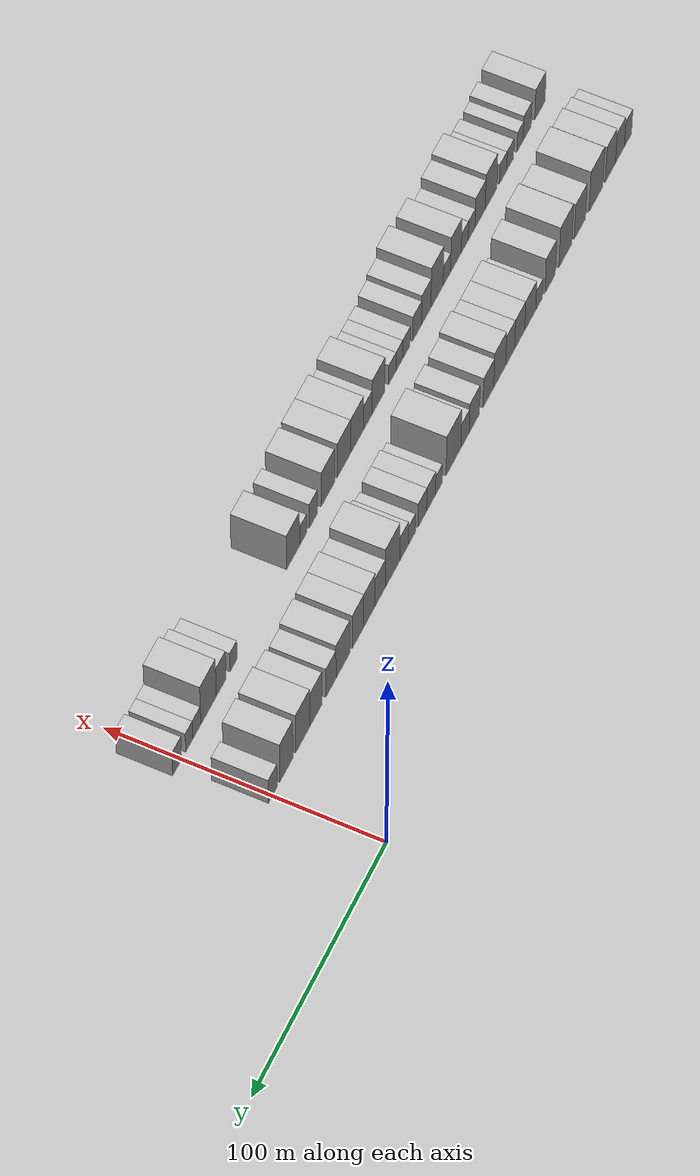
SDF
<sdf version="1.6">
 <world name="default">
  <include><name>ground_plane_1</name><uri>model://HANNAS_ground_plane</uri></include>
  <include>
   <name>ground_plane_2</name>
   <uri>model://HANNAS_ground_plane</uri>
   <pose>100 0 0  0 0 0</pose>
  </include>
  <model name="building_1">
   <static>1</static>
   <pose>50.0000 -280.9555 0 0.000000 0.000000 0.000000</pose>
   <link name="link">
    <pose>0 0 7.50 0 0 0</pose>
    <collision name="collision"><geometry><box><size>20.0000 6.0890 15.0000</size></box></geometry></collision>
    <visual name="visual">
     <cast_shadows>0</cast_shadows>
     <geometry><box><size>20.0000 6.0890 15.0000</size></box></geometry>
     <material>
      <script>
       <uri>model://HANNAS_wall/materials/scripts</uri>
       <uri>model://HANNAS_wall/materials/textures</uri>
       <name>vrc/HANNAS_wall</name>
      </script>
     </material>
    </visual>
   </link>
  </model>
  <model name="building_2">
   <static>1</static>
   <pose>50.0000 -274.2463 0 0.000000 0.000000 0.000000</pose>
   <link name="link">
    <pose>0 0 9.00 0 0 0</pose>
    <collision name="collision"><geometry><box><size>20.0000 7.3294 18.0000</size></box></geometry></collision>
    <visual name="visual">
     <cast_shadows>0</cast_shadows>
     <geometry><box><size>20.0000 7.3294 18.0000</size></box></geometry>
     <material>
      <script>
       <uri>model://HANNAS_wall/materials/scripts</uri>
       <uri>model://HANNAS_wall/materials/textures</uri>
       <name>vrc/HANNAS_wall</name>
      </script>
     </material>
    </visual>
   </link>
  </model>
  <model name="building_3">
   <static>1</static>
   <pose>50.0000 -266.2913 0 0.000000 0.000000 0.000000</pose>
   <link name="link">
    <pose>0 0 10.50 0 0 0</pose>
    <collision name="collision"><geometry><box><size>20.0000 8.5806 21.0000</size></box></geometry></collision>
    <visual name="visual">
     <cast_shadows>0</cast_shadows>
     <geometry><box><size>20.0000 8.5806 21.0000</size></box></geometry>
     <material>
      <script>
       <uri>model://HANNAS_wall/materials/scripts</uri>
       <uri>model://HANNAS_wall/materials/textures</uri>
       <name>vrc/HANNAS_wall</name>
      </script>
     </material>
    </visual>
   </link>
  </model>
  <model name="building_4">
   <static>1</static>
   <pose>50.0000 -254.3090 0 0.000000 0.000000 0.000000</pose>
   <link name="link">
    <pose>0 0 12.00 0 0 0</pose>
    <collision name="collision"><geometry><box><size>20.0000 11.3840 24.0000</size></box></geometry></collision>
    <visual name="visual">
     <cast_shadows>0</cast_shadows>
     <geometry><box><size>20.0000 11.3840 24.0000</size></box></geometry>
     <material>
      <script>
       <uri>model://HANNAS_wall/materials/scripts</uri>
       <uri>model://HANNAS_wall/materials/textures</uri>
       <name>vrc/HANNAS_wall</name>
      </script>
     </material>
    </visual>
   </link>
  </model>
  <model name="building_5">
   <static>1</static>
   <pose>50.0000 -240.9805 0 0.000000 0.000000 0.000000</pose>
   <link name="link">
    <pose>0 0 10.50 0 0 0</pose>
    <collision name="collision"><geometry><box><size>20.0000 9.2729 21.0000</size></box></geometry></collision>
    <visual name="visual">
     <cast_shadows>0</cast_shadows>
     <geometry><box><size>20.0000 9.2729 21.0000</size></box></geometry>
     <material>
      <script>
       <uri>model://HANNAS_wall/materials/scripts</uri>
       <uri>model://HANNAS_wall/materials/textures</uri>
       <name>vrc/HANNAS_wall</name>
      </script>
     </material>
    </visual>
   </link>
  </model>
  <model name="building_6">
   <static>1</static>
   <pose>50.0000 -229.0669 0 0.000000 0.000000 0.000000</pose>
   <link name="link">
    <pose>0 0 12.00 0 0 0</pose>
    <collision name="collision"><geometry><box><size>20.0000 10.5544 24.0000</size></box></geometry></collision>
    <visual name="visual">
     <cast_shadows>0</cast_shadows>
     <geometry><box><size>20.0000 10.5544 24.0000</size></box></geometry>
     <material>
      <script>
       <uri>model://HANNAS_wall/materials/scripts</uri>
       <uri>model://HANNAS_wall/materials/textures</uri>
       <name>vrc/HANNAS_wall</name>
      </script>
     </material>
    </visual>
   </link>
  </model>
  <model name="building_7">
   <static>1</static>
   <pose>50.0000 -216.5448 0 0.000000 0.000000 0.000000</pose>
   <link name="link">
    <pose>0 0 10.50 0 0 0</pose>
    <collision name="collision"><geometry><box><size>20.0000 8.4898 21.0000</size></box></geometry></collision>
    <visual name="visual">
     <cast_shadows>0</cast_shadows>
     <geometry><box><size>20.0000 8.4898 21.0000</size></box></geometry>
     <material>
      <script>
       <uri>model://HANNAS_wall/materials/scripts</uri>
       <uri>model://HANNAS_wall/materials/textures</uri>
       <name>vrc/HANNAS_wall</name>
      </script>
     </material>
    </visual>
   </link>
  </model>
  <model name="building_8">
   <static>1</static>
   <pose>50.0000 -207.5800 0 0.000000 0.000000 0.000000</pose>
   <link name="link">
    <pose>0 0 6.00 0 0 0</pose>
    <collision name="collision"><geometry><box><size>20.0000 5.4399 12.0000</size></box></geometry></collision>
    <visual name="visual">
     <cast_shadows>0</cast_shadows>
     <geometry><box><size>20.0000 5.4399 12.0000</size></box></geometry>
     <material>
      <script>
       <uri>model://HANNAS_wall/materials/scripts</uri>
       <uri>model://HANNAS_wall/materials/textures</uri>
       <name>vrc/HANNAS_wall</name>
      </script>
     </material>
    </visual>
   </link>
  </model>
  <model name="building_9">
   <static>1</static>
   <pose>50.0000 -200.3853 0 0.000000 0.000000 0.000000</pose>
   <link name="link">
    <pose>0 0 9.00 0 0 0</pose>
    <collision name="collision"><geometry><box><size>20.0000 8.9496 18.0000</size></box></geometry></collision>
    <visual name="visual">
     <cast_shadows>0</cast_shadows>
     <geometry><box><size>20.0000 8.9496 18.0000</size></box></geometry>
     <material>
      <script>
       <uri>model://HANNAS_wall/materials/scripts</uri>
       <uri>model://HANNAS_wall/materials/textures</uri>
       <name>vrc/HANNAS_wall</name>
      </script>
     </material>
    </visual>
   </link>
  </model>
  <model name="building_10">
   <static>1</static>
   <pose>50.0000 -191.7918 0 0.000000 0.000000 0.000000</pose>
   <link name="link">
    <pose>0 0 9.00 0 0 0</pose>
    <collision name="collision"><geometry><box><size>20.0000 8.2374 18.0000</size></box></geometry></collision>
    <visual name="visual">
     <cast_shadows>0</cast_shadows>
     <geometry><box><size>20.0000 8.2374 18.0000</size></box></geometry>
     <material>
      <script>
       <uri>model://HANNAS_wall/materials/scripts</uri>
       <uri>model://HANNAS_wall/materials/textures</uri>
       <name>vrc/HANNAS_wall</name>
      </script>
     </material>
    </visual>
   </link>
  </model>
  <model name="building_11">
   <static>1</static>
   <pose>50.0000 -184.0560 0 0.000000 0.000000 0.000000</pose>
   <link name="link">
    <pose>0 0 9.00 0 0 0</pose>
    <collision name="collision"><geometry><box><size>20.0000 7.2342 18.0000</size></box></geometry></collision>
    <visual name="visual">
     <cast_shadows>0</cast_shadows>
     <geometry><box><size>20.0000 7.2342 18.0000</size></box></geometry>
     <material>
      <script>
       <uri>model://HANNAS_wall/materials/scripts</uri>
       <uri>model://HANNAS_wall/materials/textures</uri>
       <name>vrc/HANNAS_wall</name>
      </script>
     </material>
    </visual>
   </link>
  </model>
  <model name="building_12">
   <static>1</static>
   <pose>50.0000 -175.7094 0 0.000000 0.000000 0.000000</pose>
   <link name="link">
    <pose>0 0 10.50 0 0 0</pose>
    <collision name="collision"><geometry><box><size>20.0000 9.4589 21.0000</size></box></geometry></collision>
    <visual name="visual">
     <cast_shadows>0</cast_shadows>
     <geometry><box><size>20.0000 9.4589 21.0000</size></box></geometry>
     <material>
      <script>
       <uri>model://HANNAS_wall/materials/scripts</uri>
       <uri>model://HANNAS_wall/materials/textures</uri>
       <name>vrc/HANNAS_wall</name>
      </script>
     </material>
    </visual>
   </link>
  </model>
  <model name="building_13">
   <static>1</static>
   <pose>50.0000 -166.6836 0 0.000000 0.000000 0.000000</pose>
   <link name="link">
    <pose>0 0 9.00 0 0 0</pose>
    <collision name="collision"><geometry><box><size>20.0000 8.5927 18.0000</size></box></geometry></collision>
    <visual name="visual">
     <cast_shadows>0</cast_shadows>
     <geometry><box><size>20.0000 8.5927 18.0000</size></box></geometry>
     <material>
      <script>
       <uri>model://HANNAS_wall/materials/scripts</uri>
       <uri>model://HANNAS_wall/materials/textures</uri>
       <name>vrc/HANNAS_wall</name>
      </script>
     </material>
    </visual>
   </link>
  </model>
  <model name="building_14">
   <static>1</static>
   <pose>50.0000 -155.3409 0 0.000000 0.000000 0.000000</pose>
   <link name="link">
    <pose>0 0 9.00 0 0 0</pose>
    <collision name="collision"><geometry><box><size>20.0000 8.0925 18.0000</size></box></geometry></collision>
    <visual name="visual">
     <cast_shadows>0</cast_shadows>
     <geometry><box><size>20.0000 8.0925 18.0000</size></box></geometry>
     <material>
      <script>
       <uri>model://HANNAS_wall/materials/scripts</uri>
       <uri>model://HANNAS_wall/materials/textures</uri>
       <name>vrc/HANNAS_wall</name>
      </script>
     </material>
    </visual>
   </link>
  </model>
  <model name="building_15">
   <static>1</static>
   <pose>50.0000 -148.0356 0 0.000000 0.000000 0.000000</pose>
   <link name="link">
    <pose>0 0 7.50 0 0 0</pose>
    <collision name="collision"><geometry><box><size>20.0000 6.5181 15.0000</size></box></geometry></collision>
    <visual name="visual">
     <cast_shadows>0</cast_shadows>
     <geometry><box><size>20.0000 6.5181 15.0000</size></box></geometry>
     <material>
      <script>
       <uri>model://HANNAS_wall/materials/scripts</uri>
       <uri>model://HANNAS_wall/materials/textures</uri>
       <name>vrc/HANNAS_wall</name>
      </script>
     </material>
    </visual>
   </link>
  </model>
  <model name="building_16">
   <static>1</static>
   <pose>50.0000 -138.9039 0 0.000000 0.000000 0.000000</pose>
   <link name="link">
    <pose>0 0 12.00 0 0 0</pose>
    <collision name="collision"><geometry><box><size>20.0000 11.7452 24.0000</size></box></geometry></collision>
    <visual name="visual">
     <cast_shadows>0</cast_shadows>
     <geometry><box><size>20.0000 11.7452 24.0000</size></box></geometry>
     <material>
      <script>
       <uri>model://HANNAS_wall/materials/scripts</uri>
       <uri>model://HANNAS_wall/materials/textures</uri>
       <name>vrc/HANNAS_wall</name>
      </script>
     </material>
    </visual>
   </link>
  </model>
  <model name="building_17">
   <static>1</static>
   <pose>50.0000 -127.3835 0 0.000000 0.000000 0.000000</pose>
   <link name="link">
    <pose>0 0 6.00 0 0 0</pose>
    <collision name="collision"><geometry><box><size>20.0000 5.2957 12.0000</size></box></geometry></collision>
    <visual name="visual">
     <cast_shadows>0</cast_shadows>
     <geometry><box><size>20.0000 5.2957 12.0000</size></box></geometry>
     <material>
      <script>
       <uri>model://HANNAS_wall/materials/scripts</uri>
       <uri>model://HANNAS_wall/materials/textures</uri>
       <name>vrc/HANNAS_wall</name>
      </script>
     </material>
    </visual>
   </link>
  </model>
  <model name="building_18">
   <static>1</static>
   <pose>50.0000 -121.2496 0 0.000000 0.000000 0.000000</pose>
   <link name="link">
    <pose>0 0 7.50 0 0 0</pose>
    <collision name="collision"><geometry><box><size>20.0000 6.9722 15.0000</size></box></geometry></collision>
    <visual name="visual">
     <cast_shadows>0</cast_shadows>
     <geometry><box><size>20.0000 6.9722 15.0000</size></box></geometry>
     <material>
      <script>
       <uri>model://HANNAS_wall/materials/scripts</uri>
       <uri>model://HANNAS_wall/materials/textures</uri>
       <name>vrc/HANNAS_wall</name>
      </script>
     </material>
    </visual>
   </link>
  </model>
  <model name="building_19">
   <static>1</static>
   <pose>50.0000 -114.3665 0 0.000000 0.000000 0.000000</pose>
   <link name="link">
    <pose>0 0 7.50 0 0 0</pose>
    <collision name="collision"><geometry><box><size>20.0000 6.7938 15.0000</size></box></geometry></collision>
    <visual name="visual">
     <cast_shadows>0</cast_shadows>
     <geometry><box><size>20.0000 6.7938 15.0000</size></box></geometry>
     <material>
      <script>
       <uri>model://HANNAS_wall/materials/scripts</uri>
       <uri>model://HANNAS_wall/materials/textures</uri>
       <name>vrc/HANNAS_wall</name>
      </script>
     </material>
    </visual>
   </link>
  </model>
  <model name="building_20">
   <static>1</static>
   <pose>50.0000 -106.2062 0 0.000000 0.000000 0.000000</pose>
   <link name="link">
    <pose>0 0 6.00 0 0 0</pose>
    <collision name="collision"><geometry><box><size>20.0000 5.5269 12.0000</size></box></geometry></collision>
    <visual name="visual">
     <cast_shadows>0</cast_shadows>
     <geometry><box><size>20.0000 5.5269 12.0000</size></box></geometry>
     <material>
      <script>
       <uri>model://HANNAS_wall/materials/scripts</uri>
       <uri>model://HANNAS_wall/materials/textures</uri>
       <name>vrc/HANNAS_wall</name>
      </script>
     </material>
    </visual>
   </link>
  </model>
  <model name="building_21">
   <static>1</static>
   <pose>50.0000 -100.1263 0 0.000000 0.000000 0.000000</pose>
   <link name="link">
    <pose>0 0 7.50 0 0 0</pose>
    <collision name="collision"><geometry><box><size>20.0000 6.6329 15.0000</size></box></geometry></collision>
    <visual name="visual">
     <cast_shadows>0</cast_shadows>
     <geometry><box><size>20.0000 6.6329 15.0000</size></box></geometry>
     <material>
      <script>
       <uri>model://HANNAS_wall/materials/scripts</uri>
       <uri>model://HANNAS_wall/materials/textures</uri>
       <name>vrc/HANNAS_wall</name>
      </script>
     </material>
    </visual>
   </link>
  </model>
  <model name="building_22">
   <static>1</static>
   <pose>50.0000 -91.1507 0 0.000000 0.000000 0.000000</pose>
   <link name="link">
    <pose>0 0 12.00 0 0 0</pose>
    <collision name="collision"><geometry><box><size>20.0000 11.3184 24.0000</size></box></geometry></collision>
    <visual name="visual">
     <cast_shadows>0</cast_shadows>
     <geometry><box><size>20.0000 11.3184 24.0000</size></box></geometry>
     <material>
      <script>
       <uri>model://HANNAS_wall/materials/scripts</uri>
       <uri>model://HANNAS_wall/materials/textures</uri>
       <name>vrc/HANNAS_wall</name>
      </script>
     </material>
    </visual>
   </link>
  </model>
  <model name="building_23">
   <static>1</static>
   <pose>50.0000 -81.5928 0 0.000000 0.000000 0.000000</pose>
   <link name="link">
    <pose>0 0 9.00 0 0 0</pose>
    <collision name="collision"><geometry><box><size>20.0000 7.7973 18.0000</size></box></geometry></collision>
    <visual name="visual">
     <cast_shadows>0</cast_shadows>
     <geometry><box><size>20.0000 7.7973 18.0000</size></box></geometry>
     <material>
      <script>
       <uri>model://HANNAS_wall/materials/scripts</uri>
       <uri>model://HANNAS_wall/materials/textures</uri>
       <name>vrc/HANNAS_wall</name>
      </script>
     </material>
    </visual>
   </link>
  </model>
  <model name="building_24">
   <static>1</static>
   <pose>50.0000 -73.3543 0 0.000000 0.000000 0.000000</pose>
   <link name="link">
    <pose>0 0 10.50 0 0 0</pose>
    <collision name="collision"><geometry><box><size>20.0000 8.6798 21.0000</size></box></geometry></collision>
    <visual name="visual">
     <cast_shadows>0</cast_shadows>
     <geometry><box><size>20.0000 8.6798 21.0000</size></box></geometry>
     <material>
      <script>
       <uri>model://HANNAS_wall/materials/scripts</uri>
       <uri>model://HANNAS_wall/materials/textures</uri>
       <name>vrc/HANNAS_wall</name>
      </script>
     </material>
    </visual>
   </link>
  </model>
  <model name="building_25">
   <static>1</static>
   <pose>50.0000 -64.5917 0 0.000000 0.000000 0.000000</pose>
   <link name="link">
    <pose>0 0 10.50 0 0 0</pose>
    <collision name="collision"><geometry><box><size>20.0000 8.8454 21.0000</size></box></geometry></collision>
    <visual name="visual">
     <cast_shadows>0</cast_shadows>
     <geometry><box><size>20.0000 8.8454 21.0000</size></box></geometry>
     <material>
      <script>
       <uri>model://HANNAS_wall/materials/scripts</uri>
       <uri>model://HANNAS_wall/materials/textures</uri>
       <name>vrc/HANNAS_wall</name>
      </script>
     </material>
    </visual>
   </link>
  </model>
  <model name="building_26">
   <static>1</static>
   <pose>50.0000 -52.9582 0 0.000000 0.000000 0.000000</pose>
   <link name="link">
    <pose>0 0 10.50 0 0 0</pose>
    <collision name="collision"><geometry><box><size>20.0000 10.4217 21.0000</size></box></geometry></collision>
    <visual name="visual">
     <cast_shadows>0</cast_shadows>
     <geometry><box><size>20.0000 10.4217 21.0000</size></box></geometry>
     <material>
      <script>
       <uri>model://HANNAS_wall/materials/scripts</uri>
       <uri>model://HANNAS_wall/materials/textures</uri>
       <name>vrc/HANNAS_wall</name>
      </script>
     </material>
    </visual>
   </link>
  </model>
  <model name="building_27">
   <static>1</static>
   <pose>50.0000 -43.9188 0 0.000000 0.000000 0.000000</pose>
   <link name="link">
    <pose>0 0 9.00 0 0 0</pose>
    <collision name="collision"><geometry><box><size>20.0000 7.6571 18.0000</size></box></geometry></collision>
    <visual name="visual">
     <cast_shadows>0</cast_shadows>
     <geometry><box><size>20.0000 7.6571 18.0000</size></box></geometry>
     <material>
      <script>
       <uri>model://HANNAS_wall/materials/scripts</uri>
       <uri>model://HANNAS_wall/materials/textures</uri>
       <name>vrc/HANNAS_wall</name>
      </script>
     </material>
    </visual>
   </link>
  </model>
  <model name="building_28">
   <static>1</static>
   <pose>50.0000 -32.5424 0 0.000000 0.000000 0.000000</pose>
   <link name="link">
    <pose>0 0 10.50 0 0 0</pose>
    <collision name="collision"><geometry><box><size>20.0000 9.0957 21.0000</size></box></geometry></collision>
    <visual name="visual">
     <cast_shadows>0</cast_shadows>
     <geometry><box><size>20.0000 9.0957 21.0000</size></box></geometry>
     <material>
      <script>
       <uri>model://HANNAS_wall/materials/scripts</uri>
       <uri>model://HANNAS_wall/materials/textures</uri>
       <name>vrc/HANNAS_wall</name>
      </script>
     </material>
    </visual>
   </link>
  </model>
  <model name="building_29">
   <static>1</static>
   <pose>50.0000 -22.6621 0 0.000000 0.000000 0.000000</pose>
   <link name="link">
    <pose>0 0 12.00 0 0 0</pose>
    <collision name="collision"><geometry><box><size>20.0000 10.6648 24.0000</size></box></geometry></collision>
    <visual name="visual">
     <cast_shadows>0</cast_shadows>
     <geometry><box><size>20.0000 10.6648 24.0000</size></box></geometry>
     <material>
      <script>
       <uri>model://HANNAS_wall/materials/scripts</uri>
       <uri>model://HANNAS_wall/materials/textures</uri>
       <name>vrc/HANNAS_wall</name>
      </script>
     </material>
    </visual>
   </link>
  </model>
  <model name="building_30">
   <static>1</static>
   <pose>50.0000 -10.3878 0 0.000000 0.000000 0.000000</pose>
   <link name="link">
    <pose>0 0 12.00 0 0 0</pose>
    <collision name="collision"><geometry><box><size>20.0000 9.8838 24.0000</size></box></geometry></collision>
    <visual name="visual">
     <cast_shadows>0</cast_shadows>
     <geometry><box><size>20.0000 9.8838 24.0000</size></box></geometry>
     <material>
      <script>
       <uri>model://HANNAS_wall/materials/scripts</uri>
       <uri>model://HANNAS_wall/materials/textures</uri>
       <name>vrc/HANNAS_wall</name>
      </script>
     </material>
    </visual>
   </link>
  </model>
  <model name="building_31">
   <static>1</static>
   <pose>50.0000 -0.1809 0 0.000000 0.000000 0.000000</pose>
   <link name="link">
    <pose>0 0 7.50 0 0 0</pose>
    <collision name="collision"><geometry><box><size>20.0000 6.5299 15.0000</size></box></geometry></collision>
    <visual name="visual">
     <cast_shadows>0</cast_shadows>
     <geometry><box><size>20.0000 6.5299 15.0000</size></box></geometry>
     <material>
      <script>
       <uri>model://HANNAS_wall/materials/scripts</uri>
       <uri>model://HANNAS_wall/materials/textures</uri>
       <name>vrc/HANNAS_wall</name>
      </script>
     </material>
    </visual>
   </link>
  </model>
  <model name="building_62">
   <static>1</static>
   <pose>82.0000 -279.7167 0 0.000000 0.000000 0.000000</pose>
   <link name="link">
    <pose>0 0 9.00 0 0 0</pose>
    <collision name="collision"><geometry><box><size>20.0000 8.5667 18.0000</size></box></geometry></collision>
    <visual name="visual">
     <cast_shadows>0</cast_shadows>
     <geometry><box><size>20.0000 8.5667 18.0000</size></box></geometry>
     <material>
      <script>
       <uri>model://HANNAS_wall/materials/scripts</uri>
       <uri>model://HANNAS_wall/materials/textures</uri>
       <name>vrc/HANNAS_wall</name>
      </script>
     </material>
    </visual>
   </link>
  </model>
  <model name="building_63">
   <static>1</static>
   <pose>82.0000 -269.1328 0 0.000000 0.000000 0.000000</pose>
   <link name="link">
    <pose>0 0 7.50 0 0 0</pose>
    <collision name="collision"><geometry><box><size>20.0000 6.6011 15.0000</size></box></geometry></collision>
    <visual name="visual">
     <cast_shadows>0</cast_shadows>
     <geometry><box><size>20.0000 6.6011 15.0000</size></box></geometry>
     <material>
      <script>
       <uri>model://HANNAS_wall/materials/scripts</uri>
       <uri>model://HANNAS_wall/materials/textures</uri>
       <name>vrc/HANNAS_wall</name>
      </script>
     </material>
    </visual>
   </link>
  </model>
  <model name="building_64">
   <static>1</static>
   <pose>82.0000 -263.3362 0 0.000000 0.000000 0.000000</pose>
   <link name="link">
    <pose>0 0 6.00 0 0 0</pose>
    <collision name="collision"><geometry><box><size>20.0000 4.9922 12.0000</size></box></geometry></collision>
    <visual name="visual">
     <cast_shadows>0</cast_shadows>
     <geometry><box><size>20.0000 4.9922 12.0000</size></box></geometry>
     <material>
      <script>
       <uri>model://HANNAS_wall/materials/scripts</uri>
       <uri>model://HANNAS_wall/materials/textures</uri>
       <name>vrc/HANNAS_wall</name>
      </script>
     </material>
    </visual>
   </link>
  </model>
  <model name="building_65">
   <static>1</static>
   <pose>82.0000 -255.0203 0 0.000000 0.000000 0.000000</pose>
   <link name="link">
    <pose>0 0 6.00 0 0 0</pose>
    <collision name="collision"><geometry><box><size>20.0000 5.6396 12.0000</size></box></geometry></collision>
    <visual name="visual">
     <cast_shadows>0</cast_shadows>
     <geometry><box><size>20.0000 5.6396 12.0000</size></box></geometry>
     <material>
      <script>
       <uri>model://HANNAS_wall/materials/scripts</uri>
       <uri>model://HANNAS_wall/materials/textures</uri>
       <name>vrc/HANNAS_wall</name>
      </script>
     </material>
    </visual>
   </link>
  </model>
  <model name="building_66">
   <static>1</static>
   <pose>82.0000 -249.2455 0 0.000000 0.000000 0.000000</pose>
   <link name="link">
    <pose>0 0 6.00 0 0 0</pose>
    <collision name="collision"><geometry><box><size>20.0000 5.9099 12.0000</size></box></geometry></collision>
    <visual name="visual">
     <cast_shadows>0</cast_shadows>
     <geometry><box><size>20.0000 5.9099 12.0000</size></box></geometry>
     <material>
      <script>
       <uri>model://HANNAS_wall/materials/scripts</uri>
       <uri>model://HANNAS_wall/materials/textures</uri>
       <name>vrc/HANNAS_wall</name>
      </script>
     </material>
    </visual>
   </link>
  </model>
  <model name="building_67">
   <static>1</static>
   <pose>82.0000 -239.5342 0 0.000000 0.000000 0.000000</pose>
   <link name="link">
    <pose>0 0 10.50 0 0 0</pose>
    <collision name="collision"><geometry><box><size>20.0000 9.5127 21.0000</size></box></geometry></collision>
    <visual name="visual">
     <cast_shadows>0</cast_shadows>
     <geometry><box><size>20.0000 9.5127 21.0000</size></box></geometry>
     <material>
      <script>
       <uri>model://HANNAS_wall/materials/scripts</uri>
       <uri>model://HANNAS_wall/materials/textures</uri>
       <name>vrc/HANNAS_wall</name>
      </script>
     </material>
    </visual>
   </link>
  </model>
  <model name="building_68">
   <static>1</static>
   <pose>82.0000 -230.6684 0 0.000000 0.000000 0.000000</pose>
   <link name="link">
    <pose>0 0 9.00 0 0 0</pose>
    <collision name="collision"><geometry><box><size>20.0000 8.2189 18.0000</size></box></geometry></collision>
    <visual name="visual">
     <cast_shadows>0</cast_shadows>
     <geometry><box><size>20.0000 8.2189 18.0000</size></box></geometry>
     <material>
      <script>
       <uri>model://HANNAS_wall/materials/scripts</uri>
       <uri>model://HANNAS_wall/materials/textures</uri>
       <name>vrc/HANNAS_wall</name>
      </script>
     </material>
    </visual>
   </link>
  </model>
  <model name="building_69">
   <static>1</static>
   <pose>82.0000 -223.7486 0 0.000000 0.000000 0.000000</pose>
   <link name="link">
    <pose>0 0 6.00 0 0 0</pose>
    <collision name="collision"><geometry><box><size>20.0000 5.6207 12.0000</size></box></geometry></collision>
    <visual name="visual">
     <cast_shadows>0</cast_shadows>
     <geometry><box><size>20.0000 5.6207 12.0000</size></box></geometry>
     <material>
      <script>
       <uri>model://HANNAS_wall/materials/scripts</uri>
       <uri>model://HANNAS_wall/materials/textures</uri>
       <name>vrc/HANNAS_wall</name>
      </script>
     </material>
    </visual>
   </link>
  </model>
  <model name="building_70">
   <static>1</static>
   <pose>82.0000 -218.1571 0 0.000000 0.000000 0.000000</pose>
   <link name="link">
    <pose>0 0 6.00 0 0 0</pose>
    <collision name="collision"><geometry><box><size>20.0000 5.5624 12.0000</size></box></geometry></collision>
    <visual name="visual">
     <cast_shadows>0</cast_shadows>
     <geometry><box><size>20.0000 5.5624 12.0000</size></box></geometry>
     <material>
      <script>
       <uri>model://HANNAS_wall/materials/scripts</uri>
       <uri>model://HANNAS_wall/materials/textures</uri>
       <name>vrc/HANNAS_wall</name>
      </script>
     </material>
    </visual>
   </link>
  </model>
  <model name="building_71">
   <static>1</static>
   <pose>82.0000 -211.0662 0 0.000000 0.000000 0.000000</pose>
   <link name="link">
    <pose>0 0 10.50 0 0 0</pose>
    <collision name="collision"><geometry><box><size>20.0000 8.6195 21.0000</size></box></geometry></collision>
    <visual name="visual">
     <cast_shadows>0</cast_shadows>
     <geometry><box><size>20.0000 8.6195 21.0000</size></box></geometry>
     <material>
      <script>
       <uri>model://HANNAS_wall/materials/scripts</uri>
       <uri>model://HANNAS_wall/materials/textures</uri>
       <name>vrc/HANNAS_wall</name>
      </script>
     </material>
    </visual>
   </link>
  </model>
  <model name="building_72">
   <static>1</static>
   <pose>82.0000 -203.7894 0 0.000000 0.000000 0.000000</pose>
   <link name="link">
    <pose>0 0 6.00 0 0 0</pose>
    <collision name="collision"><geometry><box><size>20.0000 5.9342 12.0000</size></box></geometry></collision>
    <visual name="visual">
     <cast_shadows>0</cast_shadows>
     <geometry><box><size>20.0000 5.9342 12.0000</size></box></geometry>
     <material>
      <script>
       <uri>model://HANNAS_wall/materials/scripts</uri>
       <uri>model://HANNAS_wall/materials/textures</uri>
       <name>vrc/HANNAS_wall</name>
      </script>
     </material>
    </visual>
   </link>
  </model>
  <model name="building_73">
   <static>1</static>
   <pose>82.0000 -195.9102 0 0.000000 0.000000 0.000000</pose>
   <link name="link">
    <pose>0 0 12.00 0 0 0</pose>
    <collision name="collision"><geometry><box><size>20.0000 9.8241 24.0000</size></box></geometry></collision>
    <visual name="visual">
     <cast_shadows>0</cast_shadows>
     <geometry><box><size>20.0000 9.8241 24.0000</size></box></geometry>
     <material>
      <script>
       <uri>model://HANNAS_wall/materials/scripts</uri>
       <uri>model://HANNAS_wall/materials/textures</uri>
       <name>vrc/HANNAS_wall</name>
      </script>
     </material>
    </visual>
   </link>
  </model>
  <model name="building_74">
   <static>1</static>
   <pose>82.0000 -187.2320 0 0.000000 0.000000 0.000000</pose>
   <link name="link">
    <pose>0 0 9.00 0 0 0</pose>
    <collision name="collision"><geometry><box><size>20.0000 7.5324 18.0000</size></box></geometry></collision>
    <visual name="visual">
     <cast_shadows>0</cast_shadows>
     <geometry><box><size>20.0000 7.5324 18.0000</size></box></geometry>
     <material>
      <script>
       <uri>model://HANNAS_wall/materials/scripts</uri>
       <uri>model://HANNAS_wall/materials/textures</uri>
       <name>vrc/HANNAS_wall</name>
      </script>
     </material>
    </visual>
   </link>
  </model>
  <model name="building_75">
   <static>1</static>
   <pose>82.0000 -179.9322 0 0.000000 0.000000 0.000000</pose>
   <link name="link">
    <pose>0 0 7.50 0 0 0</pose>
    <collision name="collision"><geometry><box><size>20.0000 7.0672 15.0000</size></box></geometry></collision>
    <visual name="visual">
     <cast_shadows>0</cast_shadows>
     <geometry><box><size>20.0000 7.0672 15.0000</size></box></geometry>
     <material>
      <script>
       <uri>model://HANNAS_wall/materials/scripts</uri>
       <uri>model://HANNAS_wall/materials/textures</uri>
       <name>vrc/HANNAS_wall</name>
      </script>
     </material>
    </visual>
   </link>
  </model>
  <model name="building_76">
   <static>1</static>
   <pose>82.0000 -171.4348 0 0.000000 0.000000 0.000000</pose>
   <link name="link">
    <pose>0 0 6.00 0 0 0</pose>
    <collision name="collision"><geometry><box><size>20.0000 5.9275 12.0000</size></box></geometry></collision>
    <visual name="visual">
     <cast_shadows>0</cast_shadows>
     <geometry><box><size>20.0000 5.9275 12.0000</size></box></geometry>
     <material>
      <script>
       <uri>model://HANNAS_wall/materials/scripts</uri>
       <uri>model://HANNAS_wall/materials/textures</uri>
       <name>vrc/HANNAS_wall</name>
      </script>
     </material>
    </visual>
   </link>
  </model>
  <model name="building_77">
   <static>1</static>
   <pose>82.0000 -165.8787 0 0.000000 0.000000 0.000000</pose>
   <link name="link">
    <pose>0 0 6.00 0 0 0</pose>
    <collision name="collision"><geometry><box><size>20.0000 5.1848 12.0000</size></box></geometry></collision>
    <visual name="visual">
     <cast_shadows>0</cast_shadows>
     <geometry><box><size>20.0000 5.1848 12.0000</size></box></geometry>
     <material>
      <script>
       <uri>model://HANNAS_wall/materials/scripts</uri>
       <uri>model://HANNAS_wall/materials/textures</uri>
       <name>vrc/HANNAS_wall</name>
      </script>
     </material>
    </visual>
   </link>
  </model>
  <model name="building_78">
   <static>1</static>
   <pose>82.0000 -160.4062 0 0.000000 0.000000 0.000000</pose>
   <link name="link">
    <pose>0 0 6.00 0 0 0</pose>
    <collision name="collision"><geometry><box><size>20.0000 5.7601 12.0000</size></box></geometry></collision>
    <visual name="visual">
     <cast_shadows>0</cast_shadows>
     <geometry><box><size>20.0000 5.7601 12.0000</size></box></geometry>
     <material>
      <script>
       <uri>model://HANNAS_wall/materials/scripts</uri>
       <uri>model://HANNAS_wall/materials/textures</uri>
       <name>vrc/HANNAS_wall</name>
      </script>
     </material>
    </visual>
   </link>
  </model>
  <model name="building_79">
   <static>1</static>
   <pose>82.0000 -149.5010 0 0.000000 0.000000 0.000000</pose>
   <link name="link">
    <pose>0 0 10.50 0 0 0</pose>
    <collision name="collision"><geometry><box><size>20.0000 10.0502 21.0000</size></box></geometry></collision>
    <visual name="visual">
     <cast_shadows>0</cast_shadows>
     <geometry><box><size>20.0000 10.0502 21.0000</size></box></geometry>
     <material>
      <script>
       <uri>model://HANNAS_wall/materials/scripts</uri>
       <uri>model://HANNAS_wall/materials/textures</uri>
       <name>vrc/HANNAS_wall</name>
      </script>
     </material>
    </visual>
   </link>
  </model>
  <model name="building_80">
   <static>1</static>
   <pose>82.0000 -141.1417 0 0.000000 0.000000 0.000000</pose>
   <link name="link">
    <pose>0 0 7.50 0 0 0</pose>
    <collision name="collision"><geometry><box><size>20.0000 6.6684 15.0000</size></box></geometry></collision>
    <visual name="visual">
     <cast_shadows>0</cast_shadows>
     <geometry><box><size>20.0000 6.6684 15.0000</size></box></geometry>
     <material>
      <script>
       <uri>model://HANNAS_wall/materials/scripts</uri>
       <uri>model://HANNAS_wall/materials/textures</uri>
       <name>vrc/HANNAS_wall</name>
      </script>
     </material>
    </visual>
   </link>
  </model>
  <model name="building_81">
   <static>1</static>
   <pose>82.0000 -132.7240 0 0.000000 0.000000 0.000000</pose>
   <link name="link">
    <pose>0 0 10.50 0 0 0</pose>
    <collision name="collision"><geometry><box><size>20.0000 10.1671 21.0000</size></box></geometry></collision>
    <visual name="visual">
     <cast_shadows>0</cast_shadows>
     <geometry><box><size>20.0000 10.1671 21.0000</size></box></geometry>
     <material>
      <script>
       <uri>model://HANNAS_wall/materials/scripts</uri>
       <uri>model://HANNAS_wall/materials/textures</uri>
       <name>vrc/HANNAS_wall</name>
      </script>
     </material>
    </visual>
   </link>
  </model>
  <model name="building_82">
   <static>1</static>
   <pose>82.0000 -122.4400 0 0.000000 0.000000 0.000000</pose>
   <link name="link">
    <pose>0 0 10.50 0 0 0</pose>
    <collision name="collision"><geometry><box><size>20.0000 10.4009 21.0000</size></box></geometry></collision>
    <visual name="visual">
     <cast_shadows>0</cast_shadows>
     <geometry><box><size>20.0000 10.4009 21.0000</size></box></geometry>
     <material>
      <script>
       <uri>model://HANNAS_wall/materials/scripts</uri>
       <uri>model://HANNAS_wall/materials/textures</uri>
       <name>vrc/HANNAS_wall</name>
      </script>
     </material>
    </visual>
   </link>
  </model>
  <model name="building_83">
   <static>1</static>
   <pose>82.0000 -110.0933 0 0.000000 0.000000 0.000000</pose>
   <link name="link">
    <pose>0 0 10.50 0 0 0</pose>
    <collision name="collision"><geometry><box><size>20.0000 10.2924 21.0000</size></box></geometry></collision>
    <visual name="visual">
     <cast_shadows>0</cast_shadows>
     <geometry><box><size>20.0000 10.2924 21.0000</size></box></geometry>
     <material>
      <script>
       <uri>model://HANNAS_wall/materials/scripts</uri>
       <uri>model://HANNAS_wall/materials/textures</uri>
       <name>vrc/HANNAS_wall</name>
      </script>
     </material>
    </visual>
   </link>
  </model>
  <model name="building_84">
   <static>1</static>
   <pose>82.0000 -98.8427 0 0.000000 0.000000 0.000000</pose>
   <link name="link">
    <pose>0 0 7.50 0 0 0</pose>
    <collision name="collision"><geometry><box><size>20.0000 6.2089 15.0000</size></box></geometry></collision>
    <visual name="visual">
     <cast_shadows>0</cast_shadows>
     <geometry><box><size>20.0000 6.2089 15.0000</size></box></geometry>
     <material>
      <script>
       <uri>model://HANNAS_wall/materials/scripts</uri>
       <uri>model://HANNAS_wall/materials/textures</uri>
       <name>vrc/HANNAS_wall</name>
      </script>
     </material>
    </visual>
   </link>
  </model>
  <model name="building_85">
   <static>1</static>
   <pose>82.0000 -91.1323 0 0.000000 0.000000 0.000000</pose>
   <link name="link">
    <pose>0 0 6.00 0 0 0</pose>
    <collision name="collision"><geometry><box><size>20.0000 5.2119 12.0000</size></box></geometry></collision>
    <visual name="visual">
     <cast_shadows>0</cast_shadows>
     <geometry><box><size>20.0000 5.2119 12.0000</size></box></geometry>
     <material>
      <script>
       <uri>model://HANNAS_wall/materials/scripts</uri>
       <uri>model://HANNAS_wall/materials/textures</uri>
       <name>vrc/HANNAS_wall</name>
      </script>
     </material>
    </visual>
   </link>
  </model>
  <model name="building_86">
   <static>1</static>
   <pose>82.0000 -83.4457 0 0.000000 0.000000 0.000000</pose>
   <link name="link">
    <pose>0 0 10.50 0 0 0</pose>
    <collision name="collision"><geometry><box><size>20.0000 10.1612 21.0000</size></box></geometry></collision>
    <visual name="visual">
     <cast_shadows>0</cast_shadows>
     <geometry><box><size>20.0000 10.1612 21.0000</size></box></geometry>
     <material>
      <script>
       <uri>model://HANNAS_wall/materials/scripts</uri>
       <uri>model://HANNAS_wall/materials/textures</uri>
       <name>vrc/HANNAS_wall</name>
      </script>
     </material>
    </visual>
   </link>
  </model>
  <model name="building_87">
   <static>1</static>
   <pose>82.0000 -38.3776 0 0.000000 0.000000 0.000000</pose>
   <link name="link">
    <pose>0 0 6.00 0 0 0</pose>
    <collision name="collision"><geometry><box><size>20.0000 5.3251 12.0000</size></box></geometry></collision>
    <visual name="visual">
     <cast_shadows>0</cast_shadows>
     <geometry><box><size>20.0000 5.3251 12.0000</size></box></geometry>
     <material>
      <script>
       <uri>model://HANNAS_wall/materials/scripts</uri>
       <uri>model://HANNAS_wall/materials/textures</uri>
       <name>vrc/HANNAS_wall</name>
      </script>
     </material>
    </visual>
   </link>
  </model>
  <model name="building_88">
   <static>1</static>
   <pose>82.0000 -29.0866 0 0.000000 0.000000 0.000000</pose>
   <link name="link">
    <pose>0 0 9.00 0 0 0</pose>
    <collision name="collision"><geometry><box><size>20.0000 7.2568 18.0000</size></box></geometry></collision>
    <visual name="visual">
     <cast_shadows>0</cast_shadows>
     <geometry><box><size>20.0000 7.2568 18.0000</size></box></geometry>
     <material>
      <script>
       <uri>model://HANNAS_wall/materials/scripts</uri>
       <uri>model://HANNAS_wall/materials/textures</uri>
       <name>vrc/HANNAS_wall</name>
      </script>
     </material>
    </visual>
   </link>
  </model>
  <model name="building_89">
   <static>1</static>
   <pose>82.0000 -19.6839 0 0.000000 0.000000 0.000000</pose>
   <link name="link">
    <pose>0 0 12.00 0 0 0</pose>
    <collision name="collision"><geometry><box><size>20.0000 11.5487 24.0000</size></box></geometry></collision>
    <visual name="visual">
     <cast_shadows>0</cast_shadows>
     <geometry><box><size>20.0000 11.5487 24.0000</size></box></geometry>
     <material>
      <script>
       <uri>model://HANNAS_wall/materials/scripts</uri>
       <uri>model://HANNAS_wall/materials/textures</uri>
       <name>vrc/HANNAS_wall</name>
      </script>
     </material>
    </visual>
   </link>
  </model>
  <model name="building_90">
   <static>1</static>
   <pose>82.0000 -10.9671 0 0.000000 0.000000 0.000000</pose>
   <link name="link">
    <pose>0 0 6.00 0 0 0</pose>
    <collision name="collision"><geometry><box><size>20.0000 5.8849 12.0000</size></box></geometry></collision>
    <visual name="visual">
     <cast_shadows>0</cast_shadows>
     <geometry><box><size>20.0000 5.8849 12.0000</size></box></geometry>
     <material>
      <script>
       <uri>model://HANNAS_wall/materials/scripts</uri>
       <uri>model://HANNAS_wall/materials/textures</uri>
       <name>vrc/HANNAS_wall</name>
      </script>
     </material>
    </visual>
   </link>
  </model>
  <model name="building_91">
   <static>1</static>
   <pose>82.0000 -5.3944 0 0.000000 0.000000 0.000000</pose>
   <link name="link">
    <pose>0 0 6.00 0 0 0</pose>
    <collision name="collision"><geometry><box><size>20.0000 5.2606 12.0000</size></box></geometry></collision>
    <visual name="visual">
     <cast_shadows>0</cast_shadows>
     <geometry><box><size>20.0000 5.2606 12.0000</size></box></geometry>
     <material>
      <script>
       <uri>model://HANNAS_wall/materials/scripts</uri>
       <uri>model://HANNAS_wall/materials/textures</uri>
       <name>vrc/HANNAS_wall</name>
      </script>
     </material>
    </visual>
   </link>
  </model>
  <model name="building_92">
   <static>1</static>
   <pose>82.0000 3.5590 0 0.000000 0.000000 0.000000</pose>
   <link name="link">
    <pose>0 0 7.50 0 0 0</pose>
    <collision name="collision"><geometry><box><size>20.0000 6.6462 15.0000</size></box></geometry></collision>
    <visual name="visual">
     <cast_shadows>0</cast_shadows>
     <geometry><box><size>20.0000 6.6462 15.0000</size></box></geometry>
     <material>
      <script>
       <uri>model://HANNAS_wall/materials/scripts</uri>
       <uri>model://HANNAS_wall/materials/textures</uri>
       <name>vrc/HANNAS_wall</name>
      </script>
     </material>
    </visual>
   </link>
  </model>
 </world>
</sdf>
